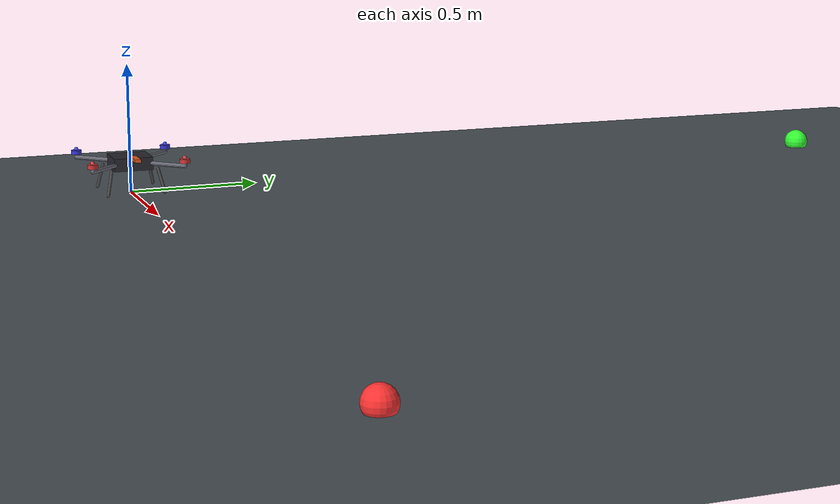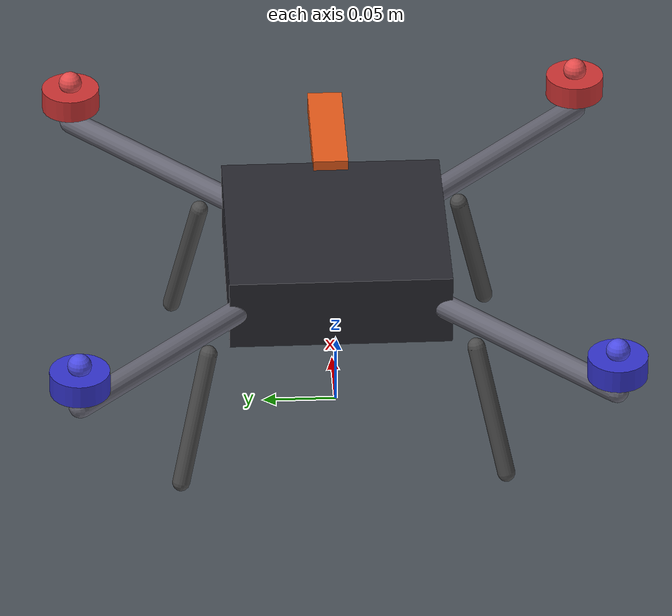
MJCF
<?xml version="1.0" encoding="utf-8"?>
<mujoco model="quad_x">
  <compiler angle="radian" coordinate="local" inertiafromgeom="auto" balanceinertia="true"/>

  <option timestep="0.001" gravity="0 0 -9.80665" integrator="RK4" density="1.2" viscosity="0"/>

  <default>
    <geom contype="1" conaffinity="1" condim="3" friction="1.0 0.05 0.05"/>
    <site type="sphere" size="0.008" rgba="1 0 0 1"/>
  </default>

  <visual>
    <headlight ambient="0.4 0.4 0.4"/>
    <global offwidth="1280" offheight="720"/>
  </visual>

  <asset>
    <texture name="grid" type="2d" builtin="checker" rgb1="0.25 0.28 0.30"
             rgb2="0.32 0.35 0.38" width="512" height="512"/>
    <material name="grid" texture="grid" texrepeat="12 12" reflectance="0.05"/>
  </asset>

  <worldbody>
    <!-- World is ENU: +x east, +y north. The marker axes make that visible. -->
    <light pos="0 0 6" dir="0 0 -1" diffuse="0.8 0.8 0.8"/>
    <geom name="floor" type="plane" size="60 60 0.1" material="grid" pos="0 0 0"/>
    <site name="east_marker" pos="3 0 0.02" size="0.05" rgba="1 0.2 0.2 1"/>
    <site name="north_marker" pos="0 3 0.02" size="0.05" rgba="0.2 1 0.2 1"/>

    <body name="base_link" pos="0 0 0.12">
      <freejoint name="base_free"/>
      <!-- qpos = [x y z qw qx qy qz] (ENU), qvel = [vx vy vz wx wy wz] -->

      <!-- Core: battery + electronics. Dominates the mass budget. -->
      <geom name="core" type="box" size="0.075 0.075 0.025" mass="1.10"
            rgba="0.15 0.15 0.18 1"/>
      <geom name="nose" type="box" size="0.045 0.012 0.006" pos="0.11 0 0.026"
            density="0" contype="0" conaffinity="0" rgba="0.9 0.35 0.1 1"/>

      <site name="imu" pos="0 0 0" quat="1 0 0 0"/>

      <!-- Arms, FLU. Each carries a rotor hub at 0.25 m from the centre. -->
      <geom name="arm0" type="capsule" fromto="0 0 0  0.17678 -0.17678 0"
            size="0.008" mass="0.03" rgba="0.4 0.4 0.45 1"/>
      <geom name="arm1" type="capsule" fromto="0 0 0 -0.17678  0.17678 0"
            size="0.008" mass="0.03" rgba="0.4 0.4 0.45 1"/>
      <geom name="arm2" type="capsule" fromto="0 0 0  0.17678  0.17678 0"
            size="0.008" mass="0.03" rgba="0.4 0.4 0.45 1"/>
      <geom name="arm3" type="capsule" fromto="0 0 0 -0.17678 -0.17678 0"
            size="0.008" mass="0.03" rgba="0.4 0.4 0.45 1"/>

      <!-- Rotor hubs. Order is PX4 rotor index; do not reorder. -->
      <geom name="rotor0_hub" type="cylinder" pos="0.17678 -0.17678 0.02"
            size="0.02 0.008" mass="0.06" rgba="0.8 0.2 0.2 1"/>
      <geom name="rotor1_hub" type="cylinder" pos="-0.17678 0.17678 0.02"
            size="0.02 0.008" mass="0.06" rgba="0.2 0.2 0.8 1"/>
      <geom name="rotor2_hub" type="cylinder" pos="0.17678 0.17678 0.02"
            size="0.02 0.008" mass="0.06" rgba="0.8 0.2 0.2 1"/>
      <geom name="rotor3_hub" type="cylinder" pos="-0.17678 -0.17678 0.02"
            size="0.02 0.008" mass="0.06" rgba="0.2 0.2 0.8 1"/>

      <!-- Thrust application points, one per rotor, in rotor index order. -->
      <site name="rotor0" pos="0.17678 -0.17678 0.032" rgba="0.9 0.3 0.3 1"/>
      <site name="rotor1" pos="-0.17678 0.17678 0.032" rgba="0.3 0.3 0.9 1"/>
      <site name="rotor2" pos="0.17678 0.17678 0.032" rgba="0.9 0.3 0.3 1"/>
      <site name="rotor3" pos="-0.17678 -0.17678 0.032" rgba="0.3 0.3 0.9 1"/>

      <!-- Landing legs: keep the body off the floor and give it a stable rest. -->
      <geom name="leg0" type="capsule" fromto="0.09 -0.09 -0.02  0.11 -0.11 -0.11"
            size="0.006" mass="0.015" rgba="0.3 0.3 0.3 1"/>
      <geom name="leg1" type="capsule" fromto="-0.09 0.09 -0.02 -0.11 0.11 -0.11"
            size="0.006" mass="0.015" rgba="0.3 0.3 0.3 1"/>
      <geom name="leg2" type="capsule" fromto="0.09 0.09 -0.02  0.11 0.11 -0.11"
            size="0.006" mass="0.015" rgba="0.3 0.3 0.3 1"/>
      <geom name="leg3" type="capsule" fromto="-0.09 -0.09 -0.02 -0.11 -0.11 -0.11"
            size="0.006" mass="0.015" rgba="0.3 0.3 0.3 1"/>
    </body>
  </worldbody>

  <sensor>
    <!-- Specific force in the site frame: [0,0,+9.81] at rest, [0,0,0] in free
         fall. Exactly what PX4's accel expects, after the FLU->FRD negation. -->
    <accelerometer name="imu_accel" site="imu"/>
    <gyro name="imu_gyro" site="imu"/>
  </sensor>
</mujoco>
